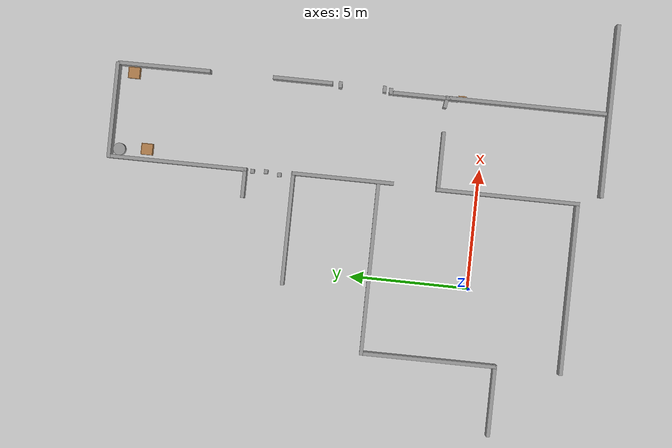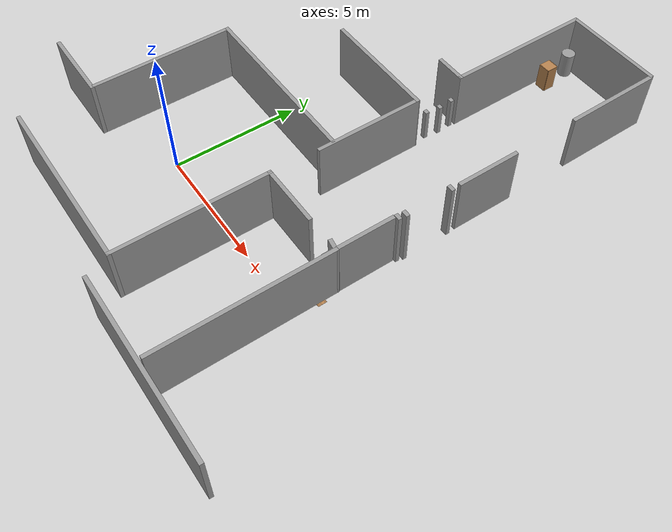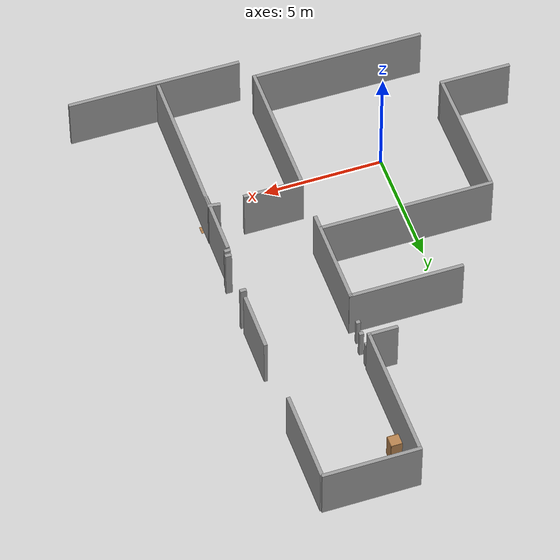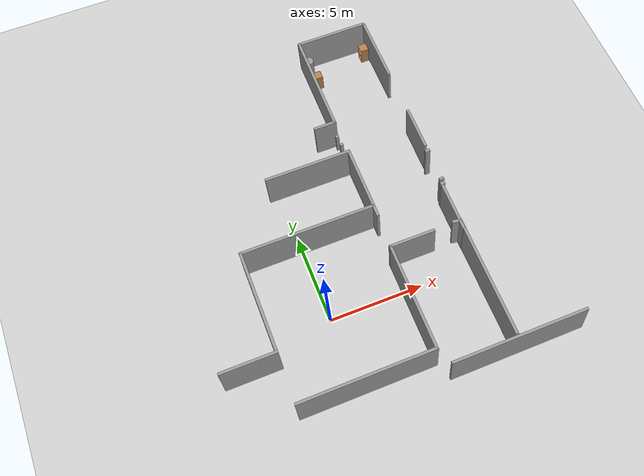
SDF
<sdf version="1.7">
 <world name="default">
  <model name="ground_plane">
   <static>1</static>
   <link name="link">
    <collision name="collision">
     <geometry><plane><normal>0 0 1</normal><size>100 100</size></plane></geometry>
     <surface>
      <contact><collide_bitmask>65535</collide_bitmask></contact>
      <friction><ode><mu>100</mu><mu2>50</mu2></ode></friction>
     </surface>
    </collision>
    <visual name="visual">
     <cast_shadows>0</cast_shadows>
     <geometry><plane><normal>0 0 1</normal><size>100 100</size></plane></geometry>
     <material>
      <script><uri>file://media/materials/scripts/gazebo.material</uri><name>Gazebo/Grey</name></script>
     </material>
    </visual>
   </link>
  </model>
  <model name="wooden_board_clone">
   <link name="base">
    <pose>0 0 0.00523 0 -0 0</pose>
    <inertial>
     <mass>0.2765</mass>
     <inertia>
      <ixx>0.0025148</ixx>
      <ixy>0</ixy>
      <ixz>0</ixz>
      <iyy>0.00024037</iyy>
      <iyz>0</iyz>
      <izz>0.00275013</izz>
     </inertia>
    </inertial>
    <collision name="collision">
     <geometry><box><size>0.1016 0.3302 0.01046</size></box></geometry>
     <surface>
      <contact>
       <poissons_ratio>0.347</poissons_ratio>
       <elastic_modulus>8.8e+09</elastic_modulus>
       <ode><kp>100000</kp><kd>100</kd><max_vel>100</max_vel><min_depth>0.001</min_depth></ode>
      </contact>
      <friction>
       <torsional>
        <coefficient>1</coefficient>
        <use_patch_radius>0</use_patch_radius>
        <surface_radius>0.01</surface_radius>
       </torsional>
      </friction>
     </surface>
    </collision>
    <visual name="visual">
     <geometry><box><size>0.1016 0.3302 0.01046</size></box></geometry>
     <material>
      <script><uri>file://media/materials/scripts/gazebo.material</uri><name>Gazebo/Wood</name></script>
     </material>
    </visual>
    <visual name="tee_nut_1">
     <pose>0 -0.116 0 0 -0 0</pose>
     <geometry><cylinder><radius>0.00635</radius><length>0.0105646</length></cylinder></geometry>
     <material>
      <script><uri>file://media/materials/scripts/gazebo.material</uri><name>Gazebo/Grey</name></script>
     </material>
    </visual>
    <visual name="tee_nut_2">
     <pose>0 -0.038 0 0 -0 0</pose>
     <geometry><cylinder><radius>0.00635</radius><length>0.0105646</length></cylinder></geometry>
     <material>
      <script><uri>file://media/materials/scripts/gazebo.material</uri><name>Gazebo/Grey</name></script>
     </material>
    </visual>
    <visual name="tee_nut_3">
     <pose>0 0.038 0 0 -0 0</pose>
     <geometry><cylinder><radius>0.00635</radius><length>0.0105646</length></cylinder></geometry>
     <material>
      <script><uri>file://media/materials/scripts/gazebo.material</uri><name>Gazebo/Grey</name></script>
     </material>
    </visual>
    <visual name="tee_nut_4">
     <pose>0 0.116 0 0 -0 0</pose>
     <geometry><cylinder><radius>0.00635</radius><length>0.0105646</length></cylinder></geometry>
     <material>
      <script><uri>file://media/materials/scripts/gazebo.material</uri><name>Gazebo/Grey</name></script>
     </material>
    </visual>
   </link>
   <pose>7.987 1.01588 -0.001007 0 -0 0.011961</pose>
  </model>
  <model name="unit_box_clone_1_clone">
   <pose>3.95442 8.34045 0.64423 -1e-06 -0 -0.000181</pose>
   <link name="link">
    <inertial>
     <mass>1</mass>
     <inertia>
      <ixx>0.166667</ixx>
      <ixy>0</ixy>
      <ixz>0</ixz>
      <iyy>0.166667</iyy>
      <iyz>0</iyz>
      <izz>0.166667</izz>
     </inertia>
    </inertial>
    <collision name="collision"><geometry><box><size>0.179333 0.158753 1.28846</size></box></geometry></collision>
    <visual name="visual">
     <geometry><box><size>0.179333 0.158753 1.28846</size></box></geometry>
     <material>
      <script><name>Gazebo/Grey</name><uri>file://media/materials/scripts/gazebo.material</uri></script>
     </material>
    </visual>
   </link>
  </model>
  <model name="unit_box_clone_1_clone_0">
   <pose>4.02883 8.9037 0.644222 -0 8e-06 -8.5e-05</pose>
   <link name="link">
    <inertial>
     <mass>1</mass>
     <inertia>
      <ixx>0.166667</ixx>
      <ixy>0</ixy>
      <ixz>0</ixz>
      <iyy>0.166667</iyy>
      <iyz>0</iyz>
      <izz>0.166667</izz>
     </inertia>
    </inertial>
    <collision name="collision"><geometry><box><size>0.179333 0.158753 1.28846</size></box></geometry></collision>
    <visual name="visual">
     <geometry><box><size>0.179333 0.158753 1.28846</size></box></geometry>
     <material>
      <script><name>Gazebo/Grey</name><uri>file://media/materials/scripts/gazebo.material</uri></script>
     </material>
    </visual>
   </link>
  </model>
  <model name="unit_box_clone_1_clone_1">
   <pose>3.99015 9.47058 0.64423 0 0 -0.000221</pose>
   <link name="link">
    <inertial>
     <mass>1</mass>
     <inertia>
      <ixx>0.166667</ixx>
      <ixy>0</ixy>
      <ixz>0</ixz>
      <iyy>0.166667</iyy>
      <iyz>0</iyz>
      <izz>0.166667</izz>
     </inertia>
    </inertial>
    <collision name="collision"><geometry><box><size>0.179333 0.158753 1.28846</size></box></geometry></collision>
    <visual name="visual">
     <geometry><box><size>0.179333 0.158753 1.28846</size></box></geometry>
     <material>
      <script><name>Gazebo/Grey</name><uri>file://media/materials/scripts/gazebo.material</uri></script>
     </material>
    </visual>
   </link>
  </model>
  <model name="unit_cylinder_0_clone_0_clone">
   <pose>4.35329 15.1161 0.499999 0 -0 2e-06</pose>
   <link name="link">
    <inertial>
     <mass>1</mass>
     <inertia><ixx>0.145833</ixx><ixy>0</ixy><ixz>0</ixz><iyy>0.145833</iyy><iyz>0</iyz><izz>0.125</izz></inertia>
    </inertial>
    <collision name="collision">
     <geometry><cylinder><radius>0.25828</radius><length>1</length></cylinder></geometry>
    </collision>
    <visual name="visual">
     <geometry><cylinder><radius>0.25828</radius><length>1</length></cylinder></geometry>
     <material>
      <script><name>Gazebo/Grey</name><uri>file://media/materials/scripts/gazebo.material</uri></script>
     </material>
    </visual>
   </link>
  </model>
  <model name="cabinet_clone_clone">
   <static>1</static>
   <link name="cabinet_bottom_plate">
    <inertial>
     <pose>0 0 -1 0 -0 0</pose>
     <inertia><ixx>2.05</ixx><ixy>0</ixy><ixz>0</ixz><iyy>2.05</iyy><iyz>0</iyz><izz>2.05</izz></inertia>
     <mass>25</mass>
    </inertial>
    <collision name="cabinet_bottom_plate_geom">
     <pose>0 0 0.01 0 -0 0</pose>
     <geometry><box><size>0.45 0.45 0.02</size></box></geometry>
    </collision>
    <visual name="cabinet_bottom_plate_geom_visual">
     <pose>0 0 0.01 0 -0 0</pose>
     <geometry><box><size>0.45 0.45 0.02</size></box></geometry>
     <material>
      <script><uri>file://media/materials/scripts/gazebo.material</uri><name>Gazebo/Wood</name></script>
     </material>
    </visual>
    <collision name="cabinet_bottom_plate_geom_cabinet_back_plate">
     <pose>0.235 0 0.51 0 -0 0</pose>
     <geometry><box><size>0.02 0.45 1.02</size></box></geometry>
    </collision>
    <visual name="cabinet_bottom_plate_geom_cabinet_back_plate_visual">
     <pose>0.235 0 0.51 0 -0 0</pose>
     <geometry><box><size>0.02 0.45 1.02</size></box></geometry>
     <material>
      <script><uri>file://media/materials/scripts/gazebo.material</uri><name>Gazebo/Wood</name></script>
     </material>
    </visual>
    <collision name="cabinet_bottom_plate_geom_cabinet_left_plate">
     <pose>0 0.235 0.51 0 -0 0</pose>
     <geometry><box><size>0.45 0.02 1.02</size></box></geometry>
    </collision>
    <visual name="cabinet_bottom_plate_geom_cabinet_left_plate_visual">
     <pose>0 0.235 0.51 0 -0 0</pose>
     <geometry><box><size>0.45 0.02 1.02</size></box></geometry>
     <material>
      <script><uri>file://media/materials/scripts/gazebo.material</uri><name>Gazebo/Wood</name></script>
     </material>
    </visual>
    <collision name="cabinet_bottom_plate_geom_cabinet_middle_plate">
     <pose>0 0 0.51 0 -0 0</pose>
     <geometry><box><size>0.45 0.45 0.02</size></box></geometry>
    </collision>
    <visual name="cabinet_bottom_plate_geom_cabinet_middle_plate_visual">
     <pose>0 0 0.51 0 -0 0</pose>
     <geometry><box><size>0.45 0.45 0.02</size></box></geometry>
     <material>
      <script><uri>file://media/materials/scripts/gazebo.material</uri><name>Gazebo/Wood</name></script>
     </material>
    </visual>
    <collision name="cabinet_bottom_plate_geom_cabinet_right_plate">
     <pose>0 -0.235 0.51 0 -0 0</pose>
     <geometry><box><size>0.45 0.02 1.02</size></box></geometry>
    </collision>
    <visual name="cabinet_bottom_plate_geom_cabinet_right_plate_visual">
     <pose>0 -0.235 0.51 0 -0 0</pose>
     <geometry><box><size>0.45 0.02 1.02</size></box></geometry>
     <material>
      <script><uri>file://media/materials/scripts/gazebo.material</uri><name>Gazebo/Wood</name></script>
     </material>
    </visual>
    <collision name="cabinet_bottom_plate_geom_cabinet_top_plate">
     <pose>0 0 1.01 0 -0 0</pose>
     <geometry><box><size>0.45 0.45 0.02</size></box></geometry>
    </collision>
    <visual name="cabinet_bottom_plate_geom_cabinet_top_plate_visual">
     <pose>0 0 1.01 0 -0 0</pose>
     <geometry><box><size>0.45 0.45 0.02</size></box></geometry>
     <material>
      <script><uri>file://media/materials/scripts/gazebo.material</uri><name>Gazebo/Wood</name></script>
     </material>
    </visual>
   </link>
   <pose>4.45944 13.9605 0 0 -0 0</pose>
  </model>
  <model name="cabinet_clone_clone_0">
   <static>1</static>
   <link name="cabinet_bottom_plate">
    <inertial>
     <pose>0 0 -1 0 -0 0</pose>
     <inertia><ixx>2.05</ixx><ixy>0</ixy><ixz>0</ixz><iyy>2.05</iyy><iyz>0</iyz><izz>2.05</izz></inertia>
     <mass>25</mass>
    </inertial>
    <collision name="cabinet_bottom_plate_geom">
     <pose>0 0 0.01 0 -0 0</pose>
     <geometry><box><size>0.45 0.45 0.02</size></box></geometry>
    </collision>
    <visual name="cabinet_bottom_plate_geom_visual">
     <pose>0 0 0.01 0 -0 0</pose>
     <geometry><box><size>0.45 0.45 0.02</size></box></geometry>
     <material>
      <script><uri>file://media/materials/scripts/gazebo.material</uri><name>Gazebo/Wood</name></script>
     </material>
    </visual>
    <collision name="cabinet_bottom_plate_geom_cabinet_back_plate">
     <pose>0.235 0 0.51 0 -0 0</pose>
     <geometry><box><size>0.02 0.45 1.02</size></box></geometry>
    </collision>
    <visual name="cabinet_bottom_plate_geom_cabinet_back_plate_visual">
     <pose>0.235 0 0.51 0 -0 0</pose>
     <geometry><box><size>0.02 0.45 1.02</size></box></geometry>
     <material>
      <script><uri>file://media/materials/scripts/gazebo.material</uri><name>Gazebo/Wood</name></script>
     </material>
    </visual>
    <collision name="cabinet_bottom_plate_geom_cabinet_left_plate">
     <pose>0 0.235 0.51 0 -0 0</pose>
     <geometry><box><size>0.45 0.02 1.02</size></box></geometry>
    </collision>
    <visual name="cabinet_bottom_plate_geom_cabinet_left_plate_visual">
     <pose>0 0.235 0.51 0 -0 0</pose>
     <geometry><box><size>0.45 0.02 1.02</size></box></geometry>
     <material>
      <script><uri>file://media/materials/scripts/gazebo.material</uri><name>Gazebo/Wood</name></script>
     </material>
    </visual>
    <collision name="cabinet_bottom_plate_geom_cabinet_middle_plate">
     <pose>0 0 0.51 0 -0 0</pose>
     <geometry><box><size>0.45 0.45 0.02</size></box></geometry>
    </collision>
    <visual name="cabinet_bottom_plate_geom_cabinet_middle_plate_visual">
     <pose>0 0 0.51 0 -0 0</pose>
     <geometry><box><size>0.45 0.45 0.02</size></box></geometry>
     <material>
      <script><uri>file://media/materials/scripts/gazebo.material</uri><name>Gazebo/Wood</name></script>
     </material>
    </visual>
    <collision name="cabinet_bottom_plate_geom_cabinet_right_plate">
     <pose>0 -0.235 0.51 0 -0 0</pose>
     <geometry><box><size>0.45 0.02 1.02</size></box></geometry>
    </collision>
    <visual name="cabinet_bottom_plate_geom_cabinet_right_plate_visual">
     <pose>0 -0.235 0.51 0 -0 0</pose>
     <geometry><box><size>0.45 0.02 1.02</size></box></geometry>
     <material>
      <script><uri>file://media/materials/scripts/gazebo.material</uri><name>Gazebo/Wood</name></script>
     </material>
    </visual>
    <collision name="cabinet_bottom_plate_geom_cabinet_top_plate">
     <pose>0 0 1.01 0 -0 0</pose>
     <geometry><box><size>0.45 0.45 0.02</size></box></geometry>
    </collision>
    <visual name="cabinet_bottom_plate_geom_cabinet_top_plate_visual">
     <pose>0 0 1.01 0 -0 0</pose>
     <geometry><box><size>0.45 0.45 0.02</size></box></geometry>
     <material>
      <script><uri>file://media/materials/scripts/gazebo.material</uri><name>Gazebo/Wood</name></script>
     </material>
    </visual>
   </link>
   <pose>7.59089 14.8132 0 0 -0 0</pose>
  </model>
  <model name="rastech_map_03">
   <link name="Wall_14">
    <pose>-2.58274 10.4706 0 0 -0 0</pose>
    <visual name="Wall_14_Visual">
     <pose>0 0 1.25 0 -0 0</pose>
     <geometry><box><size>4 0.15 2.5</size></box></geometry>
     <material>
      <script><uri>file://media/materials/scripts/gazebo.material</uri><name>Gazebo/Grey</name></script>
      <ambient>1 1 1 1</ambient>
      <shader type="pixel"/>
     </material>
     <meta><layer>0</layer></meta>
    </visual>
    <collision name="Wall_14_Collision">
     <pose>0 0 1.25 0 -0 0</pose>
     <geometry><box><size>4 0.15 2.5</size></box></geometry>
     <surface>
      <friction>
       <ode><mu>1</mu><mu2>1</mu2><fdir1>0 0 0</fdir1><slip1>0</slip1><slip2>0</slip2></ode>
       <torsional>
        <coefficient>1</coefficient>
        <patch_radius>0</patch_radius>
        <surface_radius>0</surface_radius>
        <use_patch_radius>1</use_patch_radius>
        <ode><slip>0</slip></ode>
       </torsional>
      </friction>
      <bounce><restitution_coefficient>0</restitution_coefficient><threshold>1e+06</threshold></bounce>
      <contact>
       <collide_without_contact>0</collide_without_contact>
       <collide_without_contact_bitmask>1</collide_without_contact_bitmask>
       <collide_bitmask>1</collide_bitmask>
       <ode>
        <soft_cfm>0</soft_cfm>
        <soft_erp>0.2</soft_erp>
        <kp>1e+13</kp>
        <kd>1</kd>
        <max_vel>0.01</max_vel>
        <min_depth>0</min_depth>
       </ode>
       <bullet>
        <split_impulse>1</split_impulse>
        <split_impulse_penetration_threshold>-0.01</split_impulse_penetration_threshold>
        <soft_cfm>0</soft_cfm>
        <soft_erp>0.2</soft_erp>
        <kp>1e+13</kp>
        <kd>1</kd>
       </bullet>
      </contact>
     </surface>
    </collision>
   </link>
   <link name="Wall_18">
    <pose>-0.701383 -2.43126 0 0 -0 1.5708</pose>
    <visual name="Wall_18_Visual">
     <pose>0 0 1.25 0 -0 0</pose>
     <geometry><box><size>2.75 0.15 2.5</size></box></geometry>
     <material>
      <script><uri>file://media/materials/scripts/gazebo.material</uri><name>Gazebo/Grey</name></script>
      <ambient>1 1 1 1</ambient>
      <shader type="pixel"/>
     </material>
     <meta><layer>0</layer></meta>
    </visual>
    <collision name="Wall_18_Collision">
     <pose>0 0 1.25 0 -0 0</pose>
     <geometry><box><size>2.75 0.15 2.5</size></box></geometry>
     <surface>
      <friction>
       <ode><mu>1</mu><mu2>1</mu2><fdir1>0 0 0</fdir1><slip1>0</slip1><slip2>0</slip2></ode>
       <torsional>
        <coefficient>1</coefficient>
        <patch_radius>0</patch_radius>
        <surface_radius>0</surface_radius>
        <use_patch_radius>1</use_patch_radius>
        <ode><slip>0</slip></ode>
       </torsional>
      </friction>
      <bounce><restitution_coefficient>0</restitution_coefficient><threshold>1e+06</threshold></bounce>
      <contact>
       <collide_without_contact>0</collide_without_contact>
       <collide_without_contact_bitmask>1</collide_without_contact_bitmask>
       <collide_bitmask>1</collide_bitmask>
       <ode>
        <soft_cfm>0</soft_cfm>
        <soft_erp>0.2</soft_erp>
        <kp>1e+13</kp>
        <kd>1</kd>
        <max_vel>0.01</max_vel>
        <min_depth>0</min_depth>
       </ode>
       <bullet>
        <split_impulse>1</split_impulse>
        <split_impulse_penetration_threshold>-0.01</split_impulse_penetration_threshold>
        <soft_cfm>0</soft_cfm>
        <soft_erp>0.2</soft_erp>
        <kp>1e+13</kp>
        <kd>1</kd>
       </bullet>
      </contact>
     </surface>
    </collision>
   </link>
   <link name="Wall_19">
    <pose>-0.645492 -0.952282 -0.032873 0 -0 0</pose>
    <visual name="Wall_19_Visual">
     <pose>0 0 1.25 0 -0 0</pose>
     <geometry><box><size>0.25 0.15 2.5</size></box></geometry>
     <material>
      <script><uri>file://media/materials/scripts/gazebo.material</uri><name>Gazebo/Grey</name></script>
      <ambient>1 1 1 1</ambient>
      <shader type="pixel"/>
     </material>
     <meta><layer>0</layer></meta>
    </visual>
    <collision name="Wall_19_Collision">
     <pose>0 0 1.25 0 -0 0</pose>
     <geometry><box><size>0.25 0.15 2.5</size></box></geometry>
     <surface>
      <friction>
       <ode><mu>1</mu><mu2>1</mu2><fdir1>0 0 0</fdir1><slip1>0</slip1><slip2>0</slip2></ode>
       <torsional>
        <coefficient>1</coefficient>
        <patch_radius>0</patch_radius>
        <surface_radius>0</surface_radius>
        <use_patch_radius>1</use_patch_radius>
        <ode><slip>0</slip></ode>
       </torsional>
      </friction>
      <bounce><restitution_coefficient>0</restitution_coefficient><threshold>1e+06</threshold></bounce>
      <contact>
       <collide_without_contact>0</collide_without_contact>
       <collide_without_contact_bitmask>1</collide_without_contact_bitmask>
       <collide_bitmask>1</collide_bitmask>
       <ode>
        <soft_cfm>0</soft_cfm>
        <soft_erp>0.2</soft_erp>
        <kp>1e+13</kp>
        <kd>1</kd>
        <max_vel>0.01</max_vel>
        <min_depth>0</min_depth>
       </ode>
       <bullet>
        <split_impulse>1</split_impulse>
        <split_impulse_penetration_threshold>-0.01</split_impulse_penetration_threshold>
        <soft_cfm>0</soft_cfm>
        <soft_erp>0.2</soft_erp>
        <kp>1e+13</kp>
        <kd>1</kd>
       </bullet>
      </contact>
     </surface>
    </collision>
   </link>
   <link name="Wall_23">
    <pose>-0.566645 2.73832 0 0 0 -1.5708</pose>
    <visual name="Wall_23_Visual">
     <pose>0 0 1.25 0 -0 0</pose>
     <geometry><box><size>2.5 0.15 2.5</size></box></geometry>
     <material>
      <script><uri>file://media/materials/scripts/gazebo.material</uri><name>Gazebo/Grey</name></script>
      <ambient>1 1 1 1</ambient>
      <shader type="pixel"/>
     </material>
     <meta><layer>0</layer></meta>
    </visual>
    <collision name="Wall_23_Collision">
     <pose>0 0 1.25 0 -0 0</pose>
     <geometry><box><size>2.5 0.15 2.5</size></box></geometry>
     <surface>
      <friction>
       <ode><mu>1</mu><mu2>1</mu2><fdir1>0 0 0</fdir1><slip1>0</slip1><slip2>0</slip2></ode>
       <torsional>
        <coefficient>1</coefficient>
        <patch_radius>0</patch_radius>
        <surface_radius>0</surface_radius>
        <use_patch_radius>1</use_patch_radius>
        <ode><slip>0</slip></ode>
       </torsional>
      </friction>
      <bounce><restitution_coefficient>0</restitution_coefficient><threshold>1e+06</threshold></bounce>
      <contact>
       <collide_without_contact>0</collide_without_contact>
       <collide_without_contact_bitmask>1</collide_without_contact_bitmask>
       <collide_bitmask>1</collide_bitmask>
       <ode>
        <soft_cfm>0</soft_cfm>
        <soft_erp>0.2</soft_erp>
        <kp>1e+13</kp>
        <kd>1</kd>
        <max_vel>0.01</max_vel>
        <min_depth>0</min_depth>
       </ode>
       <bullet>
        <split_impulse>1</split_impulse>
        <split_impulse_penetration_threshold>-0.01</split_impulse_penetration_threshold>
        <soft_cfm>0</soft_cfm>
        <soft_erp>0.2</soft_erp>
        <kp>1e+13</kp>
        <kd>1</kd>
       </bullet>
      </contact>
     </surface>
    </collision>
   </link>
   <link name="Wall_27_clone_8">
    <pose>-0.593577 1.16207 0.015398 0 -0 3.14159</pose>
    <inertial>
     <inertia><ixx>0</ixx><ixy>0</ixy><ixz>0</ixz><iyy>0</iyy><iyz>0</iyz><izz>0</izz></inertia>
     <mass>0</mass>
    </inertial>
    <visual name="Wall_27_Visual">
     <pose>0 0 1.25 0 -0 0</pose>
     <geometry><box><size>0.265883 0.15 2.5</size></box></geometry>
     <material>
      <script><uri>file://media/materials/scripts/gazebo.material</uri><name>Gazebo/Grey</name></script>
      <ambient>1 1 1 1</ambient>
      <shader type="pixel"/>
     </material>
     <meta><layer>0</layer></meta>
    </visual>
    <collision name="Wall_27_Collision">
     <pose>0 0 1.25 0 -0 0</pose>
     <geometry><box><size>0.265883 0.15 2.5</size></box></geometry>
     <surface>
      <friction>
       <ode><mu>1</mu><mu2>1</mu2><fdir1>0 0 0</fdir1><slip1>0</slip1><slip2>0</slip2></ode>
       <torsional>
        <coefficient>1</coefficient>
        <patch_radius>0</patch_radius>
        <surface_radius>0</surface_radius>
        <use_patch_radius>1</use_patch_radius>
        <ode><slip>0</slip></ode>
       </torsional>
      </friction>
      <bounce><restitution_coefficient>0</restitution_coefficient><threshold>1e+06</threshold></bounce>
      <contact>
       <collide_without_contact>0</collide_without_contact>
       <collide_without_contact_bitmask>1</collide_without_contact_bitmask>
       <collide_bitmask>1</collide_bitmask>
       <ode>
        <soft_cfm>0</soft_cfm>
        <soft_erp>0.2</soft_erp>
        <kp>1e+13</kp>
        <kd>1</kd>
        <max_vel>0.01</max_vel>
        <min_depth>0</min_depth>
       </ode>
       <bullet>
        <split_impulse>1</split_impulse>
        <split_impulse_penetration_threshold>-0.01</split_impulse_penetration_threshold>
        <soft_cfm>0</soft_cfm>
        <soft_erp>0.2</soft_erp>
        <kp>1e+13</kp>
        <kd>1</kd>
       </bullet>
      </contact>
     </surface>
    </collision>
   </link>
   <link name="Wall_27_clone_9">
    <pose>-0.591315 -0.686141 0 0 -0 3.14159</pose>
    <inertial>
     <inertia><ixx>0</ixx><ixy>0</ixy><ixz>0</ixz><iyy>0</iyy><iyz>0</iyz><izz>0</izz></inertia>
     <mass>0</mass>
    </inertial>
    <visual name="Wall_27_Visual">
     <pose>0 0 1.25 0 -0 0</pose>
     <geometry><box><size>0.265883 0.15 2.5</size></box></geometry>
     <material>
      <script><uri>file://media/materials/scripts/gazebo.material</uri><name>Gazebo/Grey</name></script>
      <ambient>1 1 1 1</ambient>
      <shader type="pixel"/>
     </material>
     <meta><layer>0</layer></meta>
    </visual>
    <collision name="Wall_27_Collision">
     <pose>0 0 1.25 0 -0 0</pose>
     <geometry><box><size>0.265883 0.15 2.5</size></box></geometry>
     <surface>
      <friction>
       <ode><mu>1</mu><mu2>1</mu2><fdir1>0 0 0</fdir1><slip1>0</slip1><slip2>0</slip2></ode>
       <torsional>
        <coefficient>1</coefficient>
        <patch_radius>0</patch_radius>
        <surface_radius>0</surface_radius>
        <use_patch_radius>1</use_patch_radius>
        <ode><slip>0</slip></ode>
       </torsional>
      </friction>
      <bounce><restitution_coefficient>0</restitution_coefficient><threshold>1e+06</threshold></bounce>
      <contact>
       <collide_without_contact>0</collide_without_contact>
       <collide_without_contact_bitmask>1</collide_without_contact_bitmask>
       <collide_bitmask>1</collide_bitmask>
       <ode>
        <soft_cfm>0</soft_cfm>
        <soft_erp>0.2</soft_erp>
        <kp>1e+13</kp>
        <kd>1</kd>
        <max_vel>0.01</max_vel>
        <min_depth>0</min_depth>
       </ode>
       <bullet>
        <split_impulse>1</split_impulse>
        <split_impulse_penetration_threshold>-0.01</split_impulse_penetration_threshold>
        <soft_cfm>0</soft_cfm>
        <soft_erp>0.2</soft_erp>
        <kp>1e+13</kp>
        <kd>1</kd>
       </bullet>
      </contact>
     </surface>
    </collision>
   </link>
   <link name="Wall_4">
    <pose>-4.46197 0.668338 0 0 0 -1.5708</pose>
    <visual name="Wall_4_Visual">
     <pose>0 0 1.25 0 -0 0</pose>
     <geometry><box><size>4.25 0.15 2.5</size></box></geometry>
     <material>
      <script><uri>file://media/materials/scripts/gazebo.material</uri><name>Gazebo/Grey</name></script>
      <ambient>1 1 1 1</ambient>
      <shader type="pixel"/>
     </material>
     <meta><layer>0</layer></meta>
    </visual>
    <collision name="Wall_4_Collision">
     <pose>0 0 1.25 0 -0 0</pose>
     <geometry><box><size>4.25 0.15 2.5</size></box></geometry>
     <surface>
      <friction>
       <ode><mu>1</mu><mu2>1</mu2><fdir1>0 0 0</fdir1><slip1>0</slip1><slip2>0</slip2></ode>
       <torsional>
        <coefficient>1</coefficient>
        <patch_radius>0</patch_radius>
        <surface_radius>0</surface_radius>
        <use_patch_radius>1</use_patch_radius>
        <ode><slip>0</slip></ode>
       </torsional>
      </friction>
      <bounce><restitution_coefficient>0</restitution_coefficient><threshold>1e+06</threshold></bounce>
      <contact>
       <collide_without_contact>0</collide_without_contact>
       <collide_without_contact_bitmask>1</collide_without_contact_bitmask>
       <collide_bitmask>1</collide_bitmask>
       <ode>
        <soft_cfm>0</soft_cfm>
        <soft_erp>0.2</soft_erp>
        <kp>1e+13</kp>
        <kd>1</kd>
        <max_vel>0.01</max_vel>
        <min_depth>0</min_depth>
       </ode>
       <bullet>
        <split_impulse>1</split_impulse>
        <split_impulse_penetration_threshold>-0.01</split_impulse_penetration_threshold>
        <soft_cfm>0</soft_cfm>
        <soft_erp>0.2</soft_erp>
        <kp>1e+13</kp>
        <kd>1</kd>
       </bullet>
      </contact>
     </surface>
    </collision>
   </link>
   <link name="Wall_6">
    <pose>-6.76197 2.74893 0 0 -0 3.14159</pose>
    <visual name="Wall_6_Visual">
     <pose>0 0 1.25 0 -0 0</pose>
     <geometry><box><size>4.75 0.15 2.5</size></box></geometry>
     <material>
      <script><uri>file://media/materials/scripts/gazebo.material</uri><name>Gazebo/Grey</name></script>
      <ambient>1 1 1 1</ambient>
      <shader type="pixel"/>
     </material>
     <meta><layer>0</layer></meta>
    </visual>
    <collision name="Wall_6_Collision">
     <pose>0 0 1.25 0 -0 0</pose>
     <geometry><box><size>4.75 0.15 2.5</size></box></geometry>
     <surface>
      <friction>
       <ode><mu>1</mu><mu2>1</mu2><fdir1>0 0 0</fdir1><slip1>0</slip1><slip2>0</slip2></ode>
       <torsional>
        <coefficient>1</coefficient>
        <patch_radius>0</patch_radius>
        <surface_radius>0</surface_radius>
        <use_patch_radius>1</use_patch_radius>
        <ode><slip>0</slip></ode>
       </torsional>
      </friction>
      <bounce><restitution_coefficient>0</restitution_coefficient><threshold>1e+06</threshold></bounce>
      <contact>
       <collide_without_contact>0</collide_without_contact>
       <collide_without_contact_bitmask>1</collide_without_contact_bitmask>
       <collide_bitmask>1</collide_bitmask>
       <ode>
        <soft_cfm>0</soft_cfm>
        <soft_erp>0.2</soft_erp>
        <kp>1e+13</kp>
        <kd>1</kd>
        <max_vel>0.01</max_vel>
        <min_depth>0</min_depth>
       </ode>
       <bullet>
        <split_impulse>1</split_impulse>
        <split_impulse_penetration_threshold>-0.01</split_impulse_penetration_threshold>
        <soft_cfm>0</soft_cfm>
        <soft_erp>0.2</soft_erp>
        <kp>1e+13</kp>
        <kd>1</kd>
       </bullet>
      </contact>
     </surface>
    </collision>
   </link>
   <link name="Wall_61">
    <pose>-4.53336 -6.24499 0 0 0 -1.5708</pose>
    <visual name="Wall_61_Visual">
     <pose>0 0 1.25 0 -0 0</pose>
     <geometry><box><size>6 0.15 2.5</size></box></geometry>
     <material>
      <script><uri>file://media/materials/scripts/gazebo.material</uri><name>Gazebo/Grey</name></script>
      <ambient>1 1 1 1</ambient>
      <shader type="pixel"/>
     </material>
     <meta><layer>0</layer></meta>
    </visual>
    <collision name="Wall_61_Collision">
     <pose>0 0 1.25 0 -0 0</pose>
     <geometry><box><size>6 0.15 2.5</size></box></geometry>
     <surface>
      <friction>
       <ode><mu>1</mu><mu2>1</mu2><fdir1>0 0 0</fdir1><slip1>0</slip1><slip2>0</slip2></ode>
       <torsional>
        <coefficient>1</coefficient>
        <patch_radius>0</patch_radius>
        <surface_radius>0</surface_radius>
        <use_patch_radius>1</use_patch_radius>
        <ode><slip>0</slip></ode>
       </torsional>
      </friction>
      <bounce><restitution_coefficient>0</restitution_coefficient><threshold>1e+06</threshold></bounce>
      <contact>
       <collide_without_contact>0</collide_without_contact>
       <collide_without_contact_bitmask>1</collide_without_contact_bitmask>
       <collide_bitmask>1</collide_bitmask>
       <ode>
        <soft_cfm>0</soft_cfm>
        <soft_erp>0.2</soft_erp>
        <kp>1e+13</kp>
        <kd>1</kd>
        <max_vel>0.01</max_vel>
        <min_depth>0</min_depth>
       </ode>
       <bullet>
        <split_impulse>1</split_impulse>
        <split_impulse_penetration_threshold>-0.01</split_impulse_penetration_threshold>
        <soft_cfm>0</soft_cfm>
        <soft_erp>0.2</soft_erp>
        <kp>1e+13</kp>
        <kd>1</kd>
       </bullet>
      </contact>
     </surface>
    </collision>
   </link>
   <link name="Wall_62">
    <pose>-8.08335 -9.16999 0 0 -0 3.14159</pose>
    <visual name="Wall_62_Visual">
     <pose>0 0 1.25 0 -0 0</pose>
     <geometry><box><size>7.25 0.15 2.5</size></box></geometry>
     <material>
      <script><uri>file://media/materials/scripts/gazebo.material</uri><name>Gazebo/Grey</name></script>
      <ambient>1 1 1 1</ambient>
      <shader type="pixel"/>
     </material>
     <meta><layer>0</layer></meta>
    </visual>
    <collision name="Wall_62_Collision">
     <pose>0 0 1.25 0 -0 0</pose>
     <geometry><box><size>7.25 0.15 2.5</size></box></geometry>
     <surface>
      <friction>
       <ode><mu>1</mu><mu2>1</mu2><fdir1>0 0 0</fdir1><slip1>0</slip1><slip2>0</slip2></ode>
       <torsional>
        <coefficient>1</coefficient>
        <patch_radius>0</patch_radius>
        <surface_radius>0</surface_radius>
        <use_patch_radius>1</use_patch_radius>
        <ode><slip>0</slip></ode>
       </torsional>
      </friction>
      <bounce><restitution_coefficient>0</restitution_coefficient><threshold>1e+06</threshold></bounce>
      <contact>
       <collide_without_contact>0</collide_without_contact>
       <collide_without_contact_bitmask>1</collide_without_contact_bitmask>
       <collide_bitmask>1</collide_bitmask>
       <ode>
        <soft_cfm>0</soft_cfm>
        <soft_erp>0.2</soft_erp>
        <kp>1e+13</kp>
        <kd>1</kd>
        <max_vel>0.01</max_vel>
        <min_depth>0</min_depth>
       </ode>
       <bullet>
        <split_impulse>1</split_impulse>
        <split_impulse_penetration_threshold>-0.01</split_impulse_penetration_threshold>
        <soft_cfm>0</soft_cfm>
        <soft_erp>0.2</soft_erp>
        <kp>1e+13</kp>
        <kd>1</kd>
       </bullet>
      </contact>
     </surface>
    </collision>
   </link>
   <link name="Wall_64">
    <pose>-8.08335 -0.819988 0 0 -0 0</pose>
    <visual name="Wall_64_Visual">
     <pose>0 0 1.25 0 -0 0</pose>
     <geometry><box><size>7.25 0.15 2.5</size></box></geometry>
     <material>
      <script><uri>file://media/materials/scripts/gazebo.material</uri><name>Gazebo/Grey</name></script>
      <ambient>1 1 1 1</ambient>
      <shader type="pixel"/>
     </material>
     <meta><layer>0</layer></meta>
    </visual>
    <collision name="Wall_64_Collision">
     <pose>0 0 1.25 0 -0 0</pose>
     <geometry><box><size>7.25 0.15 2.5</size></box></geometry>
     <surface>
      <friction>
       <ode><mu>1</mu><mu2>1</mu2><fdir1>0 0 0</fdir1><slip1>0</slip1><slip2>0</slip2></ode>
       <torsional>
        <coefficient>1</coefficient>
        <patch_radius>0</patch_radius>
        <surface_radius>0</surface_radius>
        <use_patch_radius>1</use_patch_radius>
        <ode><slip>0</slip></ode>
       </torsional>
      </friction>
      <bounce><restitution_coefficient>0</restitution_coefficient><threshold>1e+06</threshold></bounce>
      <contact>
       <collide_without_contact>0</collide_without_contact>
       <collide_without_contact_bitmask>1</collide_without_contact_bitmask>
       <collide_bitmask>1</collide_bitmask>
       <ode>
        <soft_cfm>0</soft_cfm>
        <soft_erp>0.2</soft_erp>
        <kp>1e+13</kp>
        <kd>1</kd>
        <max_vel>0.01</max_vel>
        <min_depth>0</min_depth>
       </ode>
       <bullet>
        <split_impulse>1</split_impulse>
        <split_impulse_penetration_threshold>-0.01</split_impulse_penetration_threshold>
        <soft_cfm>0</soft_cfm>
        <soft_erp>0.2</soft_erp>
        <kp>1e+13</kp>
        <kd>1</kd>
       </bullet>
      </contact>
     </surface>
    </collision>
   </link>
   <link name="Wall_64_clone">
    <pose>-0.556729 -10.1194 0 0 -0 0</pose>
    <visual name="Wall_64_Visual">
     <pose>0 0 1.25 0 -0 0</pose>
     <geometry><box><size>7.25 0.15 2.5</size></box></geometry>
     <material>
      <script><uri>file://media/materials/scripts/gazebo.material</uri><name>Gazebo/Grey</name></script>
      <ambient>1 1 1 1</ambient>
      <shader type="pixel"/>
     </material>
     <meta><layer>0</layer></meta>
    </visual>
    <collision name="Wall_64_Collision">
     <pose>0 0 1.25 0 -0 0</pose>
     <geometry><box><size>7.25 0.15 2.5</size></box></geometry>
     <surface>
      <friction>
       <ode><mu>1</mu><mu2>1</mu2><fdir1>0 0 0</fdir1><slip1>0</slip1><slip2>0</slip2></ode>
       <torsional>
        <coefficient>1</coefficient>
        <patch_radius>0</patch_radius>
        <surface_radius>0</surface_radius>
        <use_patch_radius>1</use_patch_radius>
        <ode><slip>0</slip></ode>
       </torsional>
      </friction>
      <bounce><restitution_coefficient>0</restitution_coefficient><threshold>1e+06</threshold></bounce>
      <contact>
       <collide_without_contact>0</collide_without_contact>
       <collide_without_contact_bitmask>1</collide_without_contact_bitmask>
       <collide_bitmask>1</collide_bitmask>
       <ode>
        <soft_cfm>0</soft_cfm>
        <soft_erp>0.2</soft_erp>
        <kp>1e+13</kp>
        <kd>1</kd>
        <max_vel>0.01</max_vel>
        <min_depth>0</min_depth>
       </ode>
       <bullet>
        <split_impulse>1</split_impulse>
        <split_impulse_penetration_threshold>-0.01</split_impulse_penetration_threshold>
        <soft_cfm>0</soft_cfm>
        <soft_erp>0.2</soft_erp>
        <kp>1e+13</kp>
        <kd>1</kd>
       </bullet>
      </contact>
     </surface>
    </collision>
   </link>
   <link name="Wall_66">
    <pose>-11.6334 -3.61999 0 0 0 -1.5708</pose>
    <visual name="Wall_66_Visual">
     <pose>0 0 1.25 0 -0 0</pose>
     <geometry><box><size>5.75 0.15 2.5</size></box></geometry>
     <material>
      <script><uri>file://media/materials/scripts/gazebo.material</uri><name>Gazebo/Grey</name></script>
      <ambient>1 1 1 1</ambient>
      <shader type="pixel"/>
     </material>
     <meta><layer>0</layer></meta>
    </visual>
    <collision name="Wall_66_Collision">
     <pose>0 0 1.25 0 -0 0</pose>
     <geometry><box><size>5.75 0.15 2.5</size></box></geometry>
     <surface>
      <friction>
       <ode><mu>1</mu><mu2>1</mu2><fdir1>0 0 0</fdir1><slip1>0</slip1><slip2>0</slip2></ode>
       <torsional>
        <coefficient>1</coefficient>
        <patch_radius>0</patch_radius>
        <surface_radius>0</surface_radius>
        <use_patch_radius>1</use_patch_radius>
        <ode><slip>0</slip></ode>
       </torsional>
      </friction>
      <bounce><restitution_coefficient>0</restitution_coefficient><threshold>1e+06</threshold></bounce>
      <contact>
       <collide_without_contact>0</collide_without_contact>
       <collide_without_contact_bitmask>1</collide_without_contact_bitmask>
       <collide_bitmask>1</collide_bitmask>
       <ode>
        <soft_cfm>0</soft_cfm>
        <soft_erp>0.2</soft_erp>
        <kp>1e+13</kp>
        <kd>1</kd>
        <max_vel>0.01</max_vel>
        <min_depth>0</min_depth>
       </ode>
       <bullet>
        <split_impulse>1</split_impulse>
        <split_impulse_penetration_threshold>-0.01</split_impulse_penetration_threshold>
        <soft_cfm>0</soft_cfm>
        <soft_erp>0.2</soft_erp>
        <kp>1e+13</kp>
        <kd>1</kd>
       </bullet>
      </contact>
     </surface>
    </collision>
   </link>
   <link name="Wall_67">
    <pose>-13.0584 -6.41999 0 0 -0 3.14159</pose>
    <visual name="Wall_67_Visual">
     <pose>0 0 1.25 0 -0 0</pose>
     <geometry><box><size>3 0.15 2.5</size></box></geometry>
     <material>
      <script><uri>file://media/materials/scripts/gazebo.material</uri><name>Gazebo/Grey</name></script>
      <ambient>1 1 1 1</ambient>
      <shader type="pixel"/>
     </material>
     <meta><layer>0</layer></meta>
    </visual>
    <collision name="Wall_67_Collision">
     <pose>0 0 1.25 0 -0 0</pose>
     <geometry><box><size>3 0.15 2.5</size></box></geometry>
     <surface>
      <friction>
       <ode><mu>1</mu><mu2>1</mu2><fdir1>0 0 0</fdir1><slip1>0</slip1><slip2>0</slip2></ode>
       <torsional>
        <coefficient>1</coefficient>
        <patch_radius>0</patch_radius>
        <surface_radius>0</surface_radius>
        <use_patch_radius>1</use_patch_radius>
        <ode><slip>0</slip></ode>
       </torsional>
      </friction>
      <bounce><restitution_coefficient>0</restitution_coefficient><threshold>1e+06</threshold></bounce>
      <contact>
       <collide_without_contact>0</collide_without_contact>
       <collide_without_contact_bitmask>1</collide_without_contact_bitmask>
       <collide_bitmask>1</collide_bitmask>
       <ode>
        <soft_cfm>0</soft_cfm>
        <soft_erp>0.2</soft_erp>
        <kp>1e+13</kp>
        <kd>1</kd>
        <max_vel>0.01</max_vel>
        <min_depth>0</min_depth>
       </ode>
       <bullet>
        <split_impulse>1</split_impulse>
        <split_impulse_penetration_threshold>-0.01</split_impulse_penetration_threshold>
        <soft_cfm>0</soft_cfm>
        <soft_erp>0.2</soft_erp>
        <kp>1e+13</kp>
        <kd>1</kd>
       </bullet>
      </contact>
     </surface>
    </collision>
   </link>
   <link name="Wall_69">
    <pose>-0.595237 8.53266 0 0 -0 1.57688</pose>
    <inertial>
     <inertia><ixx>0</ixx><ixy>0</ixy><ixz>0</ixz><iyy>0</iyy><iyz>0</iyz><izz>0</izz></inertia>
     <mass>0</mass>
    </inertial>
    <visual name="Wall_69_Visual">
     <pose>0 0 1.25 0 -0 0</pose>
     <geometry><box><size>3.84792 0.15 2.5</size></box></geometry>
     <material>
      <script><uri>file://media/materials/scripts/gazebo.material</uri><name>Gazebo/Grey</name></script>
      <ambient>1 1 1 1</ambient>
      <shader type="pixel"/>
     </material>
     <meta><layer>0</layer></meta>
    </visual>
    <collision name="Wall_69_Collision">
     <pose>0 0 1.25 0 -0 0</pose>
     <geometry><box><size>3.84792 0.15 2.5</size></box></geometry>
     <surface>
      <friction>
       <ode><mu>1</mu><mu2>1</mu2><fdir1>0 0 0</fdir1><slip1>0</slip1><slip2>0</slip2></ode>
       <torsional>
        <coefficient>1</coefficient>
        <patch_radius>0</patch_radius>
        <surface_radius>0</surface_radius>
        <use_patch_radius>1</use_patch_radius>
        <ode><slip>0</slip></ode>
       </torsional>
      </friction>
      <bounce><restitution_coefficient>0</restitution_coefficient><threshold>1e+06</threshold></bounce>
      <contact>
       <collide_without_contact>0</collide_without_contact>
       <collide_without_contact_bitmask>1</collide_without_contact_bitmask>
       <collide_bitmask>1</collide_bitmask>
       <ode>
        <soft_cfm>0</soft_cfm>
        <soft_erp>0.2</soft_erp>
        <kp>1e+13</kp>
        <kd>1</kd>
        <max_vel>0.01</max_vel>
        <min_depth>0</min_depth>
       </ode>
       <bullet>
        <split_impulse>1</split_impulse>
        <split_impulse_penetration_threshold>-0.01</split_impulse_penetration_threshold>
        <soft_cfm>0</soft_cfm>
        <soft_erp>0.2</soft_erp>
        <kp>1e+13</kp>
        <kd>1</kd>
       </bullet>
      </contact>
     </surface>
    </collision>
   </link>
   <link name="Wall_72">
    <pose>-0.683355 -6.61999 0 0 0 -1.5708</pose>
    <visual name="Wall_72_Visual">
     <pose>0 0 1.25 0 -0 0</pose>
     <geometry><box><size>6.75 0.15 2.5</size></box></geometry>
     <material>
      <script><uri>file://media/materials/scripts/gazebo.material</uri><name>Gazebo/Grey</name></script>
      <ambient>1 1 1 1</ambient>
      <shader type="pixel"/>
     </material>
     <meta><layer>0</layer></meta>
    </visual>
    <collision name="Wall_72_Collision">
     <pose>0 0 1.25 0 -0 0</pose>
     <geometry><box><size>6.75 0.15 2.5</size></box></geometry>
     <surface>
      <friction>
       <ode><mu>1</mu><mu2>1</mu2><fdir1>0 0 0</fdir1><slip1>0</slip1><slip2>0</slip2></ode>
       <torsional>
        <coefficient>1</coefficient>
        <patch_radius>0</patch_radius>
        <surface_radius>0</surface_radius>
        <use_patch_radius>1</use_patch_radius>
        <ode><slip>0</slip></ode>
       </torsional>
      </friction>
      <bounce><restitution_coefficient>0</restitution_coefficient><threshold>1e+06</threshold></bounce>
      <contact>
       <collide_without_contact>0</collide_without_contact>
       <collide_without_contact_bitmask>1</collide_without_contact_bitmask>
       <collide_bitmask>1</collide_bitmask>
       <ode>
        <soft_cfm>0</soft_cfm>
        <soft_erp>0.2</soft_erp>
        <kp>1e+13</kp>
        <kd>1</kd>
        <max_vel>0.01</max_vel>
        <min_depth>0</min_depth>
       </ode>
       <bullet>
        <split_impulse>1</split_impulse>
        <split_impulse_penetration_threshold>-0.01</split_impulse_penetration_threshold>
        <soft_cfm>0</soft_cfm>
        <soft_erp>0.2</soft_erp>
        <kp>1e+13</kp>
        <kd>1</kd>
       </bullet>
      </contact>
     </surface>
    </collision>
   </link>
   <link name="Wall_74">
    <pose>-3.35835 -3.31999 0 0 -0 0</pose>
    <visual name="Wall_74_Visual">
     <pose>0 0 1.25 0 -0 0</pose>
     <geometry><box><size>2.5 0.15 2.5</size></box></geometry>
     <material>
      <script><uri>file://media/materials/scripts/gazebo.material</uri><name>Gazebo/Grey</name></script>
      <ambient>1 1 1 1</ambient>
      <shader type="pixel"/>
     </material>
     <meta><layer>0</layer></meta>
    </visual>
    <collision name="Wall_74_Collision">
     <pose>0 0 1.25 0 -0 0</pose>
     <geometry><box><size>2.5 0.15 2.5</size></box></geometry>
     <surface>
      <friction>
       <ode><mu>1</mu><mu2>1</mu2><fdir1>0 0 0</fdir1><slip1>0</slip1><slip2>0</slip2></ode>
       <torsional>
        <coefficient>1</coefficient>
        <patch_radius>0</patch_radius>
        <surface_radius>0</surface_radius>
        <use_patch_radius>1</use_patch_radius>
        <ode><slip>0</slip></ode>
       </torsional>
      </friction>
      <bounce><restitution_coefficient>0</restitution_coefficient><threshold>1e+06</threshold></bounce>
      <contact>
       <collide_without_contact>0</collide_without_contact>
       <collide_without_contact_bitmask>1</collide_without_contact_bitmask>
       <collide_bitmask>1</collide_bitmask>
       <ode>
        <soft_cfm>0</soft_cfm>
        <soft_erp>0.2</soft_erp>
        <kp>1e+13</kp>
        <kd>1</kd>
        <max_vel>0.01</max_vel>
        <min_depth>0</min_depth>
       </ode>
       <bullet>
        <split_impulse>1</split_impulse>
        <split_impulse_penetration_threshold>-0.01</split_impulse_penetration_threshold>
        <soft_cfm>0</soft_cfm>
        <soft_erp>0.2</soft_erp>
        <kp>1e+13</kp>
        <kd>1</kd>
       </bullet>
      </contact>
     </surface>
    </collision>
   </link>
   <link name="Wall_76">
    <pose>-0.862177 -3.29112 0 0 0 -0.16008</pose>
    <visual name="Wall_76_Visual">
     <pose>0 0 1.25 0 -0 0</pose>
     <geometry><box><size>0.512276 0.15 2.5</size></box></geometry>
     <material>
      <script><uri>file://media/materials/scripts/gazebo.material</uri><name>Gazebo/Grey</name></script>
      <ambient>1 1 1 1</ambient>
      <shader type="pixel"/>
     </material>
     <meta><layer>0</layer></meta>
    </visual>
    <collision name="Wall_76_Collision">
     <pose>0 0 1.25 0 -0 0</pose>
     <geometry><box><size>0.512276 0.15 2.5</size></box></geometry>
     <surface>
      <friction>
       <ode><mu>1</mu><mu2>1</mu2><fdir1>0 0 0</fdir1><slip1>0</slip1><slip2>0</slip2></ode>
       <torsional>
        <coefficient>1</coefficient>
        <patch_radius>0</patch_radius>
        <surface_radius>0</surface_radius>
        <use_patch_radius>1</use_patch_radius>
        <ode><slip>0</slip></ode>
       </torsional>
      </friction>
      <bounce><restitution_coefficient>0</restitution_coefficient><threshold>1e+06</threshold></bounce>
      <contact>
       <collide_without_contact>0</collide_without_contact>
       <collide_without_contact_bitmask>1</collide_without_contact_bitmask>
       <collide_bitmask>1</collide_bitmask>
       <ode>
        <soft_cfm>0</soft_cfm>
        <soft_erp>0.2</soft_erp>
        <kp>1e+13</kp>
        <kd>1</kd>
        <max_vel>0.01</max_vel>
        <min_depth>0</min_depth>
       </ode>
       <bullet>
        <split_impulse>1</split_impulse>
        <split_impulse_penetration_threshold>-0.01</split_impulse_penetration_threshold>
        <soft_cfm>0</soft_cfm>
        <soft_erp>0.2</soft_erp>
        <kp>1e+13</kp>
        <kd>1</kd>
       </bullet>
      </contact>
     </surface>
    </collision>
   </link>
   <link name="Wall_83">
    <pose>-5.05774 4.76426 0 0 -0 3.14159</pose>
    <visual name="Wall_83_Visual">
     <pose>0 0 1.25 0 -0 0</pose>
     <geometry><box><size>1.25 0.15 2.5</size></box></geometry>
     <material>
      <script><uri>file://media/materials/scripts/gazebo.material</uri><name>Gazebo/Grey</name></script>
      <ambient>1 1 1 1</ambient>
      <shader type="pixel"/>
     </material>
     <meta><layer>0</layer></meta>
    </visual>
    <collision name="Wall_83_Collision">
     <pose>0 0 1.25 0 -0 0</pose>
     <geometry><box><size>1.25 0.15 2.5</size></box></geometry>
     <surface>
      <friction>
       <ode><mu>1</mu><mu2>1</mu2><fdir1>0 0 0</fdir1><slip1>0</slip1><slip2>0</slip2></ode>
       <torsional>
        <coefficient>1</coefficient>
        <patch_radius>0</patch_radius>
        <surface_radius>0</surface_radius>
        <use_patch_radius>1</use_patch_radius>
        <ode><slip>0</slip></ode>
       </torsional>
      </friction>
      <bounce><restitution_coefficient>0</restitution_coefficient><threshold>1e+06</threshold></bounce>
      <contact>
       <collide_without_contact>0</collide_without_contact>
       <collide_without_contact_bitmask>1</collide_without_contact_bitmask>
       <collide_bitmask>1</collide_bitmask>
       <ode>
        <soft_cfm>0</soft_cfm>
        <soft_erp>0.2</soft_erp>
        <kp>1e+13</kp>
        <kd>1</kd>
        <max_vel>0.01</max_vel>
        <min_depth>0</min_depth>
       </ode>
       <bullet>
        <split_impulse>1</split_impulse>
        <split_impulse_penetration_threshold>-0.01</split_impulse_penetration_threshold>
        <soft_cfm>0</soft_cfm>
        <soft_erp>0.2</soft_erp>
        <kp>1e+13</kp>
        <kd>1</kd>
       </bullet>
      </contact>
     </surface>
    </collision>
   </link>
   <link name="Wall_9">
    <pose>-4.50774 7.60739 0 0 -0 1.5708</pose>
    <visual name="Wall_9_Visual">
     <pose>0 0 1.25 0 -0 0</pose>
     <geometry><box><size>5.83625 0.15 2.5</size></box></geometry>
     <material>
      <script><uri>file://media/materials/scripts/gazebo.material</uri><name>Gazebo/Grey</name></script>
      <ambient>1 1 1 1</ambient>
      <shader type="pixel"/>
     </material>
     <meta><layer>0</layer></meta>
    </visual>
    <collision name="Wall_9_Collision">
     <pose>0 0 1.25 0 -0 0</pose>
     <geometry><box><size>5.83625 0.15 2.5</size></box></geometry>
     <surface>
      <friction>
       <ode><mu>1</mu><mu2>1</mu2><fdir1>0 0 0</fdir1><slip1>0</slip1><slip2>0</slip2></ode>
       <torsional>
        <coefficient>1</coefficient>
        <patch_radius>0</patch_radius>
        <surface_radius>0</surface_radius>
        <use_patch_radius>1</use_patch_radius>
        <ode><slip>0</slip></ode>
       </torsional>
      </friction>
      <bounce><restitution_coefficient>0</restitution_coefficient><threshold>1e+06</threshold></bounce>
      <contact>
       <collide_without_contact>0</collide_without_contact>
       <collide_without_contact_bitmask>1</collide_without_contact_bitmask>
       <collide_bitmask>1</collide_bitmask>
       <ode>
        <soft_cfm>0</soft_cfm>
        <soft_erp>0.2</soft_erp>
        <kp>1e+13</kp>
        <kd>1</kd>
        <max_vel>0.01</max_vel>
        <min_depth>0</min_depth>
       </ode>
       <bullet>
        <split_impulse>1</split_impulse>
        <split_impulse_penetration_threshold>-0.01</split_impulse_penetration_threshold>
        <soft_cfm>0</soft_cfm>
        <soft_erp>0.2</soft_erp>
        <kp>1e+13</kp>
        <kd>1</kd>
       </bullet>
      </contact>
     </surface>
    </collision>
   </link>
   <static>1</static>
   <pose>8.52776 4.9996 -0.217318 0 -0 0</pose>
  </model>
 </world>
</sdf>
